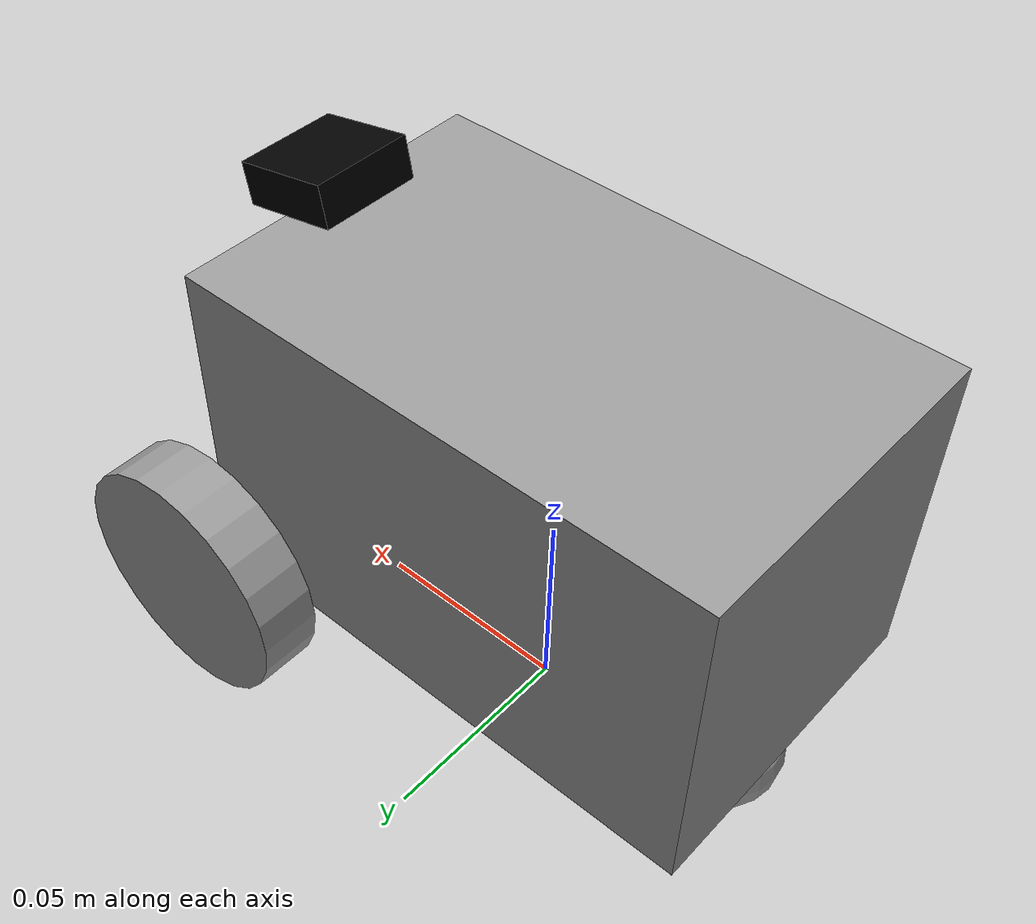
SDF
<?xml version='1.0'?>
<sdf version='1.6'>
  <model name='hummingbot'>
    <link name='main_box'>
      <pose>0.0 0.0 0.07 0 -0 0</pose>
      <inertial>
        <mass>50</mass>
        <inertia>
          <ixx>0.00533333</ixx>
          <ixy>0</ixy>
          <ixz>0</ixz>
          <iyy>0.00970833</iyy>
          <iyz>0</iyz>
          <izz>0.00970833</izz>
        </inertia>
        <pose>0 0 0 0 -0 0</pose>
      </inertial>
      <gravity>1</gravity>
      <self_collide>0</self_collide>
      <kinematic>0</kinematic>
      <enable_wind>0</enable_wind>
      <visual name='visual'>
        <pose frame=''>0 0 0 0 -0 0</pose>
        <geometry>
          <box>
            <size>0.13 0.08 0.08</size>
          </box>
        </geometry>
        <material>
          <lighting>1</lighting>
          <script>a
            <uri>file://media/materials/scripts/gazebo.material</uri>
            <name>Gazebo/Grey</name>
          </script>
          <shader type='vertex'>
            <normal_map>__default__</normal_map>
          </shader>
          <ambient>0.3 0.3 0.3 1</ambient>
          <diffuse>0.7 0.7 0.7 1</diffuse>
          <specular>0.01 0.01 0.01 1</specular>
          <emissive>0 0 0 1</emissive>
        </material>
        <transparency>0</transparency>
        <cast_shadows>1</cast_shadows>
      </visual>
      <collision name='collision'>
        <laser_retro>0</laser_retro>
        <max_contacts>10</max_contacts>
        <pose frame=''>0 0 0 0 -0 0</pose>
        <geometry>
          <box>
            <size>>0.13 0.08 0.08</size>
          </box>
        </geometry>
      </collision>
    </link>
    <link name='ball_wheel'>
      <pose frame=''>-0.048 -0.002958 0.0127 0 -0 0</pose>
      <inertial>
        <mass>0.01</mass>
        <inertia>
          <ixx>0.00000645</ixx>
          <ixy>0</ixy>
          <ixz>0</ixz>
          <iyy>0.00000645</iyy>
          <iyz>0</iyz>
          <izz>0.00000645</izz>
        </inertia>
        <pose frame=''>0 0 0 0 -0 0</pose>
      </inertial>
      <gravity>1</gravity>
      <self_collide>0</self_collide>
      <kinematic>0</kinematic>
      <enable_wind>0</enable_wind>
      <visual name='visual'>
        <pose frame=''>0 0 0 0 -0 0</pose>
        <geometry>
          <sphere>
            <radius>0.015</radius>
          </sphere>
        </geometry>
        <material>
          <lighting>1</lighting>
          <script>
            <uri>file://media/materials/scripts/gazebo.material</uri>
            <name>Gazebo/Grey</name>
          </script>
          <shader type='vertex'>
            <normal_map>__default__</normal_map>
          </shader>
          <ambient>0.3 0.3 0.3 1</ambient>
          <diffuse>0.7 0.7 0.7 1</diffuse>
          <specular>0.01 0.01 0.01 1</specular>
          <emissive>0 0 0 1</emissive>
        </material>
        <transparency>0</transparency>
        <cast_shadows>1</cast_shadows>
      </visual>
      <collision name='collision'>
        <laser_retro>0</laser_retro>
        <max_contacts>10</max_contacts>
        <pose frame=''>0 0 0 0 -0 0</pose>
        <geometry>
          <sphere>
            <radius>0.015</radius>
          </sphere>
        </geometry>
      </collision>
    </link>
    <link name='camera_link'>
      <pose frame=''>0.065 0 0.115 0 0.2  0</pose>
      <inertial>
        <mass>0.03</mass>
        <inertia>
          <ixx>0</ixx>
          <iyy>0</iyy>
          <izz>0</izz>
          <ixy>0</ixy>
          <ixz>0</ixz>
          <iyz>0</iyz>
        </inertia>
        <pose frame='main_box'>0 0 0 0 0 0</pose>
      </inertial>
      <sensor name='camera' type='camera'>
        <camera name='__default__'>
          <horizontal_fov>2.79253</horizontal_fov>
          <image>
            <width>1280</width>
            <height>720</height>
          </image>
          <clip>
            <near>0.01</near>
            <far>1</far>
          </clip>
        </camera>
        <always_on>1</always_on>
        <update_rate>10</update_rate>
        <visualize>1</visualize>
      </sensor>
      <self_collide>0</self_collide>
      <enable_wind>0</enable_wind>
      <kinematic>0</kinematic>
      <gravity>1</gravity>
      <visual name='visual'>
        <geometry>
          <box>
            <size>0.024 0.025 0.01</size>
          </box>
        </geometry>
        <material>
          <shader type='pixel'>
            <normal_map>__default__</normal_map>
          </shader>
          <script>
            <name>ModelPreview_7::camera_link::visual_MATERIAL_</name>
            <uri>__default__</uri>
          </script>
          <ambient>0 0 0 1</ambient>
          <diffuse>0 0 0 1</diffuse>
          <specular>0 0 0 1</specular>
          <emissive>0 0 0 1</emissive>
        </material>
        <pose frame=''>0 0 0 0 -0 0</pose>
        <transparency>0</transparency>
        <cast_shadows>1</cast_shadows>
      </visual>
      <collision name='collision'>
        <laser_retro>0</laser_retro>
        <max_contacts>10</max_contacts>
        <pose frame=''>0 0 0 0 -0 0</pose>
        <geometry>
          <box>
            <size>0.024 0.021 0.01</size>
          </box>
        </geometry>
      </collision>
    </link>
    <link name='left_wheel'>
      <pose frame=''>0.065 0.049 0.03 1.5707 -0 0</pose>
      <inertial>
        <mass>0.2</mass>
        <inertia>
          <ixx>0.145833</ixx>
          <ixy>0</ixy>
          <ixz>0</ixz>
          <iyy>0.145833</iyy>
          <iyz>0</iyz>
          <izz>0.125</izz>
        </inertia>
        <pose frame=''>0 0 0 0 -0 0</pose>
      </inertial>
      <gravity>1</gravity>
      <self_collide>0</self_collide>
      <kinematic>0</kinematic>
      <enable_wind>0</enable_wind>
      <visual name='visual'>
        <pose frame=''>0 0 0 0 -0 0</pose>
        <geometry>
          <cylinder>
            <radius>0.03</radius>
            <length>0.015</length>
          </cylinder>
        </geometry>
        <material>
          <lighting>1</lighting>
          <script>
            <uri>file://media/materials/scripts/gazebo.material</uri>
            <name>Gazebo/Grey</name>
          </script>
          <shader type='vertex'>
            <normal_map>__default__</normal_map>
          </shader>
          <ambient>0.3 0.3 0.3 1</ambient>
          <diffuse>0.7 0.7 0.7 1</diffuse>
          <specular>0.01 0.01 0.01 1</specular>
          <emissive>0 0 0 1</emissive>
        </material>
        <transparency>0</transparency>
        <cast_shadows>1</cast_shadows>
      </visual>
      <collision name='collision'>
        <laser_retro>0</laser_retro>
        <max_contacts>10</max_contacts>
        <pose frame=''>0 0 0 0 -0 0</pose>
        <geometry>
          <cylinder>
            <radius>0.03</radius>
            <length>0.015</length>
          </cylinder>
        </geometry>
       </collision>
    </link>
    <link name='right_wheel'>
      <pose frame=''>0.065 -0.049 0.03 1.5707 -0 0</pose>
      <inertial>
        <mass>0.1</mass>
        <inertia>
          <ixx>0.145833</ixx>
          <ixy>0</ixy>
          <ixz>0</ixz>
          <iyy>0.145833</iyy>
          <iyz>0</iyz>
          <izz>0.125</izz>
        </inertia>
        <pose frame=''>0 0 0 0 -0 0</pose>
      </inertial>
      <gravity>1</gravity>
      <self_collide>0</self_collide>
      <kinematic>0</kinematic>
      <enable_wind>0</enable_wind>
      <visual name='visual'>
        <pose frame=''>0 0 0 0 -0 0</pose>
        <geometry>
          <cylinder>
            <radius>0.03</radius>
            <length>0.015</length>
          </cylinder>
        </geometry>
        <material>
          <lighting>1</lighting>
          <script>
            <uri>file://media/materials/scripts/gazebo.material</uri>
            <name>Gazebo/Grey</name>
          </script>
          <shader type='vertex'>
            <normal_map>__default__</normal_map>
          </shader>
          <ambient>0.3 0.3 0.3 1</ambient>
          <diffuse>0.7 0.7 0.7 1</diffuse>
          <specular>0.01 0.01 0.01 1</specular>
          <emissive>0 0 0 1</emissive>
        </material>
        <transparency>0</transparency>
        <cast_shadows>1</cast_shadows>
      </visual>
      <collision name='collision'>
        <laser_retro>0</laser_retro>
        <max_contacts>10</max_contacts>
        <pose frame=''>0 0 0 0 -0 0</pose>
        <geometry>
          <cylinder>
            <radius>0.03</radius>
            <length>0.015</length>
          </cylinder>
        </geometry>
      </collision>
    </link>
    <joint name='ball_link' type='ball'>
      <parent>main_box</parent>
      <child>ball_wheel</child>
      <pose frame=''>0 0 0 0 -0 0</pose>
      <physics>
        <ode>
          <limit>
            <cfm>0</cfm>
            <erp>0.2</erp>
          </limit>
          <suspension>
            <cfm>0</cfm>
            <erp>0.2</erp>
          </suspension>
        </ode>
      </physics>
    </joint>
    <joint name='camera_joint' type='fixed'>
      <parent>main_box</parent>
      <child>camera_link</child>
      <pose frame=''>0 0 0 0 -0 0</pose>
      <physics>
        <ode>
          <limit>
            <cfm>0</cfm>
            <erp>0.2</erp>
          </limit>
          <suspension>
            <cfm>0</cfm>
            <erp>0.2</erp>
          </suspension>
        </ode>
      </physics>
    </joint>
    <joint name='left_wheel_hinge' type='revolute'>
      <parent>main_box</parent>
      <child>left_wheel</child>
      <pose frame=''>0 0 0 0 -0 0</pose>
      <axis>
        <xyz>0 0 1</xyz>
        <use_parent_model_frame>0</use_parent_model_frame>
        <limit>
          <lower>-1.79769e+308</lower>
          <upper>1.79769e+308</upper>
          <effort>-1</effort>
          <velocity>-1</velocity>
        </limit>
        <dynamics>
          <spring_reference>0</spring_reference>
          <spring_stiffness>0</spring_stiffness>
          <damping>0</damping>
          <friction>0</friction>
        </dynamics>
      </axis>
      <physics>
        <ode>
          <limit>
            <cfm>0</cfm>
            <erp>0.2</erp>
          </limit>
          <suspension>
            <cfm>0</cfm>
            <erp>0.2</erp>
          </suspension>
        </ode>
      </physics>
    </joint>
    <joint name='right_wheel_hinge' type='revolute'>
      <parent>main_box</parent>
      <child>right_wheel</child>
      <pose frame=''>0 0 0 0 -0 0</pose>
      <axis>
        <xyz>0 0 1</xyz>
        <use_parent_model_frame>0</use_parent_model_frame>
        <limit>
          <lower>-1.79769e+308</lower>
          <upper>1.79769e+308</upper>
          <effort>-1</effort>
          <velocity>-1</velocity>
        </limit>
        <dynamics>
          <spring_reference>0</spring_reference>
          <spring_stiffness>0</spring_stiffness>
          <damping>0</damping>
          <friction>0</friction>
        </dynamics>
      </axis>
      <physics>
        <ode>
          <limit>
            <cfm>0</cfm>
            <erp>0.2</erp>
          </limit>
          <suspension>
            <cfm>0</cfm>
            <erp>0.2</erp>
          </suspension>
        </ode>
      </physics>
    </joint>
    <static>0</static>
    <allow_auto_disable>1</allow_auto_disable>
   </model>
 </sdf>
